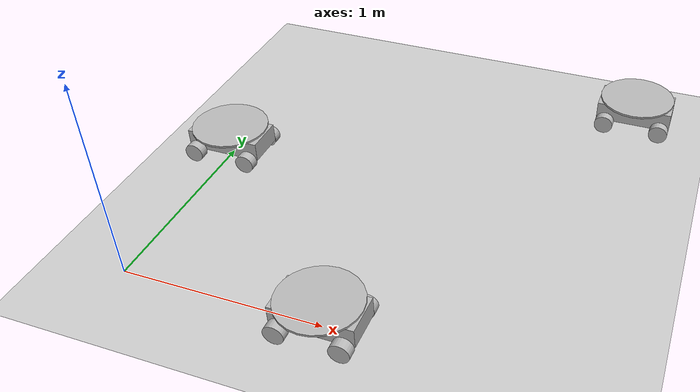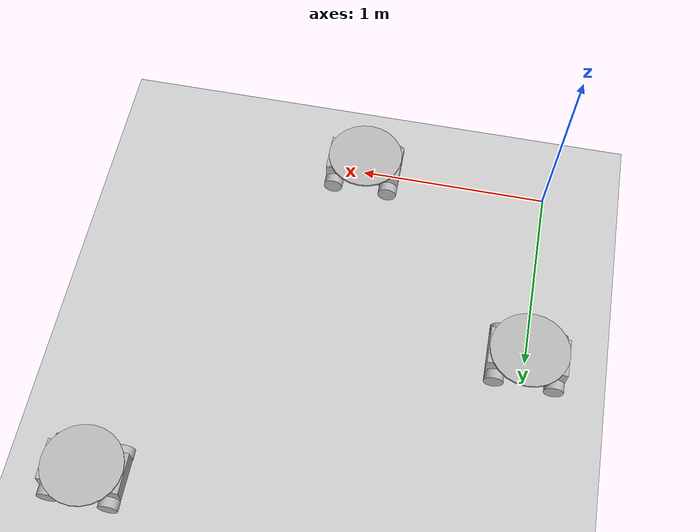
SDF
<sdf version="1.5">
 <world name="warehouse_lg">
  <include><uri>model://sun</uri></include>
  <include><uri>model://ground_plane</uri></include>
  <include><uri>model://./models/kiva</uri><name>kiva_1</name><pose>2 2 0 0 0 0</pose></include>
  <include><uri>model://./models/kiva</uri><name>kiva_2</name><pose>0 1 0 0 0 0</pose></include>
  <include><uri>model://./models/kiva</uri><name>kiva_3</name><pose>1 0 0 0 0 0</pose></include>
 </world>
</sdf>

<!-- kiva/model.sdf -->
<sdf version="1.6">
<!-- kiva model -->
		<model name="kiva">
			<static>false</static>
			<link name='chassis'>
           		<pose>0 0 .1 0 0 0</pose>
		        <collision name='collision'>
		         	<geometry>
		           		<box>
		              		<size>.4 .2 .1</size>
		            		</box>
		          	</geometry>
		        	</collision>

		        <visual name='visual'>
		        		<geometry>
		            		<box>
		              		<size>.4 .2 .1</size>
		            		</box>
		          	</geometry>
		        </visual>
          	</link>
          	<link name="left_front_wheel">
        			<pose>0.15 0.13 0.05 0 1.5707 1.5707</pose>
        			<collision name="collision">
          			<geometry>
            				<cylinder>
              				<radius>.05</radius>
              				<length>.05</length>
            				</cylinder>
          			</geometry>
        			</collision>
        			<visual name="visual">
          			<geometry>
            				<cylinder>
              				<radius>.05</radius>
              				<length>.05</length>
            				</cylinder>
          			</geometry>
        			</visual>
      		</link>
      		<link name="left_back_wheel">
        			<pose>-0.15 0.13 0.05 0 1.5707 1.5707</pose>
        			<collision name="collision">
          			<geometry>
            				<cylinder>
              				<radius>.05</radius>
              				<length>.05</length>
            				</cylinder>
          			</geometry>
        			</collision>
        			<visual name="visual">
          			<geometry>
            				<cylinder>
              				<radius>.05</radius>
              				<length>.05</length>
            				</cylinder>
          			</geometry>
        			</visual>
      		</link>
      		<link name="right_front_wheel">
        			<pose>0.15 -0.13 0.05 0 1.5707 1.5707</pose>
        			<collision name="collision">
          			<geometry>
            				<cylinder>
              				<radius>.05</radius>
              				<length>.05</length>
            				</cylinder>
          			</geometry>
        			</collision>
        			<visual name="visual">
          			<geometry>
            				<cylinder>
              				<radius>.05</radius>
              				<length>.05</length>
            				</cylinder>
          			</geometry>
        			</visual>
      		</link>
      		<link name="right_back_wheel">
        			<pose>-0.15 -0.13 0.05 0 1.5707 1.5707</pose>
        			<collision name="collision">
          			<geometry>
            				<cylinder>
              				<radius>.05</radius>
              				<length>.05</length>
           				</cylinder>
          			</geometry>
        			</collision>
        			<visual name="visual">
          			<geometry>
            				<cylinder>
              				<radius>.05</radius>
              				<length>.05</length>
            				</cylinder>
          			</geometry>
       			</visual>
      		</link>
      		<link name="tower">
      			<visual name="tower">
        				<pose>0.00 0.00 0.15 0 0 0</pose>
        				<geometry>
          				<box>
            					<size>0.09 0.09 0.02</size>
          				</box>
        				</geometry>
      			</visual>
       			<collision name="tower">
        				<pose>0.00 0.00 0.16 0 0 0</pose>
        				<geometry>
          				<box>
            					<size>0.09 0.09 0.02</size>
          				</box>
        				</geometry>
      			</collision>
		</link>
		<link name="tower_plate">
      			<visual name="tower_plate">
        				<pose>0 0 0.165 0 0 0</pose>
        				<geometry>
          				<cylinder>
            					<length>0.01</length>
            					<radius>0.2</radius>
          				</cylinder>
        				</geometry>
      			</visual>
      			<collision name="tower_plate">
        				<pose>0 0 0.165 0 0 0</pose>
        				<geometry>
          				<cylinder>
            					<length>0.01</length>
            					<radius>0.2</radius>
          				</cylinder>
        				</geometry>
      			</collision>
    			</link>
      		<joint type="revolute" name="left_front_wheel_hinge">
        			<pose>0 0 -0.03 0 0 0</pose>
        			<child>left_front_wheel</child>
        			<parent>chassis</parent>
        			<axis>
          			<xyz>0 0 1</xyz>
       			</axis>
      		</joint>
			<joint type="revolute" name="left_back_wheel_hinge">
        			<pose>0 0 -0.03 0 0 0</pose>
        			<child>left_back_wheel</child>
        			<parent>chassis</parent>
        			<axis>
          			<xyz>0 0 1</xyz>
       			</axis>
      		</joint>
      		<joint type="revolute" name="right_front_wheel_hinge">
        			<pose>0 0 0.03 0 0 0</pose>
        			<child>right_front_wheel</child>
        			<parent>chassis</parent>
        			<axis>
          			<xyz>0 0 1</xyz>
        			</axis>
      		</joint>
      		<joint type="revolute" name="right_back_wheel_hinge">
        			<pose>0 0 0.03 0 0 0</pose>
        			<child>right_back_wheel</child>
        			<parent>chassis</parent>
        			<axis>
          			<xyz>0 0 1</xyz>
        			</axis>
      		</joint>
      		<joint type="fixed" name="tower_body">
        			<pose>0 0 0 0 0 0</pose>
        			<child>tower</child>
        			<parent>chassis</parent>
      		</joint>
      		<joint type="fixed" name="tower_head">
        			<pose>0 0 0 0 0 0</pose>
        			<child>tower_plate</child>
        			<parent>tower</parent>
      		</joint>
	    <plugin name="kiva_rotate_center" filename="../kiva_plugins/build/libkiva_rotate_center.so">
			<direction>0</direction>
	    </plugin>
		</model>
</sdf>
